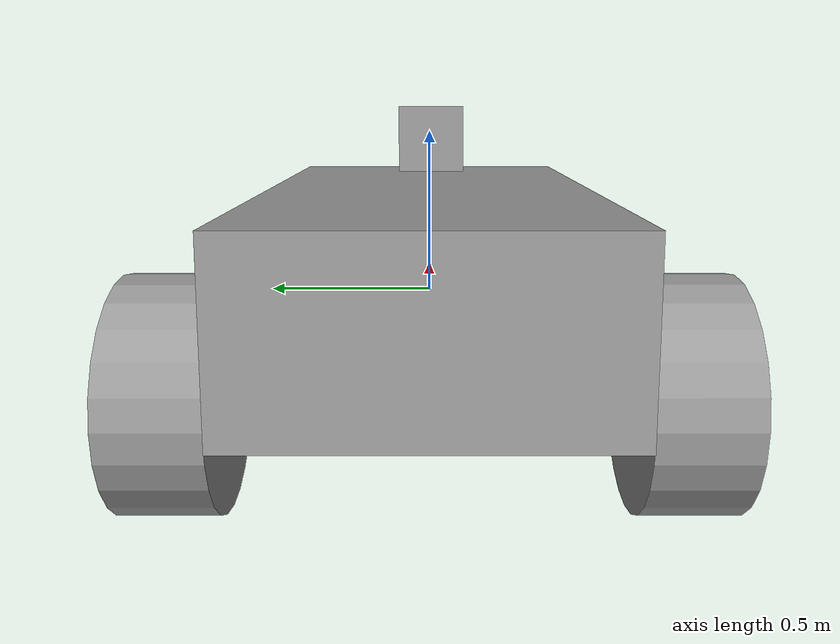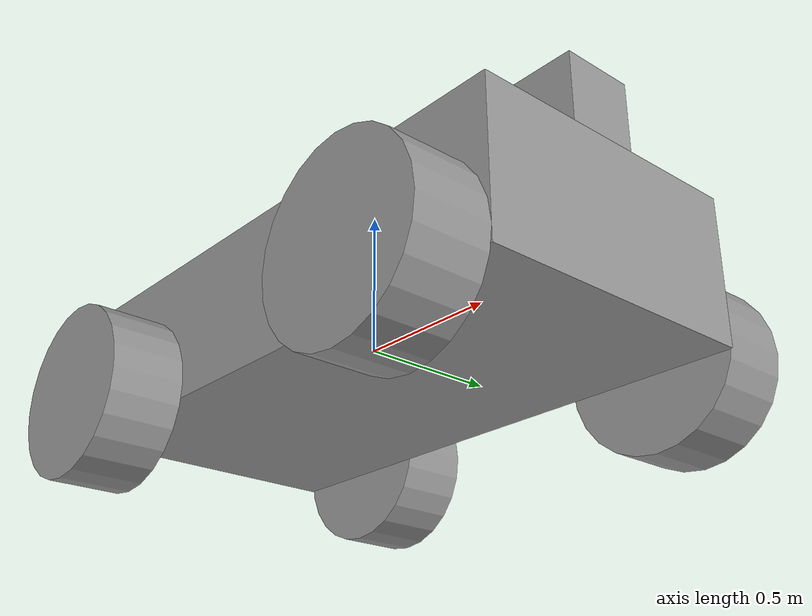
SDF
<?xml version='1.0'?>
<sdf version='1.7'>
  <model name='objectFollower'>
    <link name='link_0'>
      <inertial>
        <mass>1</mass>
        <inertia>
          <ixx>0.166667</ixx>
          <ixy>0</ixy>
          <ixz>0</ixz>
          <iyy>0.166667</iyy>
          <iyz>0</iyz>
          <izz>0.166667</izz>
        </inertia>
        <pose>0 0 0 0 -0 0</pose>
      </inertial>
      <pose>0.020993 0.00125 0.070833 0 -0 0</pose>
      <gravity>1</gravity>
      <self_collide>0</self_collide>
      <kinematic>0</kinematic>
      <enable_wind>0</enable_wind>
      <visual name='visual'>
        <pose>0 0 0 0 -0 0</pose>
        <geometry>
          <box>
            <size>2 1 0.5</size>
          </box>
        </geometry>
        <material>
          <lighting>1</lighting>
          <script>
            <uri>file://media/materials/scripts/gazebo.material</uri>
            <name>Gazebo/Grey</name>
          </script>
          <shader type='pixel'>
            <normal_map>__default__</normal_map>
          </shader>
          <ambient>0.3 0.3 0.3 1</ambient>
          <diffuse>0.7 0.7 0.7 1</diffuse>
          <specular>0.01 0.01 0.01 1</specular>
          <emissive>0 0 0 1</emissive>
        </material>
        <transparency>0</transparency>
        <cast_shadows>1</cast_shadows>
      </visual>
      <collision name='collision'>
        <laser_retro>0</laser_retro>
        <max_contacts>10</max_contacts>
        <pose>0 0 0 0 -0 0</pose>
        <geometry>
          <box>
            <size>0 0 0</size>
          </box>
        </geometry>
        <surface>
          <friction>
            <ode>
              <mu>1</mu>
              <mu2>1</mu2>
              <fdir1>0 0 0</fdir1>
              <slip1>0</slip1>
              <slip2>0</slip2>
            </ode>
            <torsional>
              <coefficient>1</coefficient>
              <patch_radius>0</patch_radius>
              <surface_radius>0</surface_radius>
              <use_patch_radius>1</use_patch_radius>
              <ode>
                <slip>0</slip>
              </ode>
            </torsional>
          </friction>
          <bounce>
            <restitution_coefficient>0</restitution_coefficient>
            <threshold>1e+06</threshold>
          </bounce>
          <contact>
            <collide_without_contact>0</collide_without_contact>
            <collide_without_contact_bitmask>1</collide_without_contact_bitmask>
            <collide_bitmask>1</collide_bitmask>
            <ode>
              <soft_cfm>0</soft_cfm>
              <soft_erp>0.2</soft_erp>
              <kp>1e+13</kp>
              <kd>1</kd>
              <max_vel>0.01</max_vel>
              <min_depth>0</min_depth>
            </ode>
            <bullet>
              <split_impulse>1</split_impulse>
              <split_impulse_penetration_threshold>-0.01</split_impulse_penetration_threshold>
              <soft_cfm>0</soft_cfm>
              <soft_erp>0.2</soft_erp>
              <kp>1e+13</kp>
              <kd>1</kd>
            </bullet>
          </contact>
        </surface>
      </collision>
    </link>
    <link name='link_1'>
      <inertial>
        <mass>1</mass>
        <inertia>
          <ixx>0.145833</ixx>
          <ixy>0</ixy>
          <ixz>0</ixz>
          <iyy>0.145833</iyy>
          <iyz>0</iyz>
          <izz>0.125</izz>
        </inertia>
        <pose>0 0 0 0 -0 0</pose>
      </inertial>
      <pose>-0.679007 -0.623779 -0.129167 1.5707 -0 0</pose>
      <gravity>1</gravity>
      <self_collide>0</self_collide>
      <kinematic>0</kinematic>
      <enable_wind>0</enable_wind>
      <visual name='visual'>
        <pose>0 0 0 0 -0 0</pose>
        <geometry>
          <cylinder>
            <radius>0.3</radius>
            <length>0.25</length>
          </cylinder>
        </geometry>
        <material>
          <lighting>1</lighting>
          <script>
            <uri>file://media/materials/scripts/gazebo.material</uri>
            <name>Gazebo/Grey</name>
          </script>
          <shader type='pixel'>
            <normal_map>__default__</normal_map>
          </shader>
          <ambient>0.3 0.3 0.3 1</ambient>
          <diffuse>0.7 0.7 0.7 1</diffuse>
          <specular>0.01 0.01 0.01 1</specular>
          <emissive>0 0 0 1</emissive>
        </material>
        <transparency>0</transparency>
        <cast_shadows>1</cast_shadows>
      </visual>
      <collision name='collision'>
        <laser_retro>0</laser_retro>
        <max_contacts>10</max_contacts>
        <pose>0 0 0 0 -0 0</pose>
        <geometry>
          <cylinder>
            <radius>0.3</radius>
            <length>0.25</length>
          </cylinder>
        </geometry>
        <surface>
          <friction>
            <ode>
              <mu>0.1</mu>
              <mu2>0.1</mu2>
              <fdir1>0 0 0</fdir1>
              <slip1>0</slip1>
              <slip2>0</slip2>
            </ode>
            <torsional>
              <coefficient>1</coefficient>
              <patch_radius>0</patch_radius>
              <surface_radius>0</surface_radius>
              <use_patch_radius>1</use_patch_radius>
              <ode>
                <slip>0</slip>
              </ode>
            </torsional>
          </friction>
          <bounce>
            <restitution_coefficient>0</restitution_coefficient>
            <threshold>1e+06</threshold>
          </bounce>
          <contact>
            <collide_without_contact>0</collide_without_contact>
            <collide_without_contact_bitmask>1</collide_without_contact_bitmask>
            <collide_bitmask>1</collide_bitmask>
            <ode>
              <soft_cfm>0</soft_cfm>
              <soft_erp>0.2</soft_erp>
              <kp>1e+13</kp>
              <kd>1</kd>
              <max_vel>0.01</max_vel>
              <min_depth>0</min_depth>
            </ode>
            <bullet>
              <split_impulse>1</split_impulse>
              <split_impulse_penetration_threshold>-0.01</split_impulse_penetration_threshold>
              <soft_cfm>0</soft_cfm>
              <soft_erp>0.2</soft_erp>
              <kp>1e+13</kp>
              <kd>1</kd>
            </bullet>
          </contact>
        </surface>
      </collision>
    </link>
    <link name='link_1_clone'>
      <inertial>
        <mass>1</mass>
        <inertia>
          <ixx>0.145833</ixx>
          <ixy>0</ixy>
          <ixz>0</ixz>
          <iyy>0.145833</iyy>
          <iyz>0</iyz>
          <izz>0.125</izz>
        </inertia>
        <pose>0 0 0 0 -0 0</pose>
      </inertial>
      <pose>0.720993 -0.623779 -0.129167 1.5707 -0 0</pose>
      <gravity>1</gravity>
      <self_collide>0</self_collide>
      <kinematic>0</kinematic>
      <enable_wind>0</enable_wind>
      <visual name='visual'>
        <pose>0 0 0 0 -0 0</pose>
        <geometry>
          <cylinder>
            <radius>0.3</radius>
            <length>0.25</length>
          </cylinder>
        </geometry>
        <material>
          <lighting>1</lighting>
          <script>
            <uri>file://media/materials/scripts/gazebo.material</uri>
            <name>Gazebo/Grey</name>
          </script>
          <shader type='pixel'>
            <normal_map>__default__</normal_map>
          </shader>
          <ambient>0.3 0.3 0.3 1</ambient>
          <diffuse>0.7 0.7 0.7 1</diffuse>
          <specular>0.01 0.01 0.01 1</specular>
          <emissive>0 0 0 1</emissive>
        </material>
        <transparency>0</transparency>
        <cast_shadows>1</cast_shadows>
      </visual>
      <collision name='collision'>
        <laser_retro>0</laser_retro>
        <max_contacts>10</max_contacts>
        <pose>0 0 0 0 -0 0</pose>
        <geometry>
          <cylinder>
            <radius>0.3</radius>
            <length>0.25</length>
          </cylinder>
        </geometry>
        <surface>
          <friction>
            <ode>
              <mu>0.1</mu>
              <mu2>0.1</mu2>
              <fdir1>0 0 0</fdir1>
              <slip1>0</slip1>
              <slip2>0</slip2>
            </ode>
            <torsional>
              <coefficient>1</coefficient>
              <patch_radius>0</patch_radius>
              <surface_radius>0</surface_radius>
              <use_patch_radius>1</use_patch_radius>
              <ode>
                <slip>0</slip>
              </ode>
            </torsional>
          </friction>
          <bounce>
            <restitution_coefficient>0</restitution_coefficient>
            <threshold>1e+06</threshold>
          </bounce>
          <contact>
            <collide_without_contact>0</collide_without_contact>
            <collide_without_contact_bitmask>1</collide_without_contact_bitmask>
            <collide_bitmask>1</collide_bitmask>
            <ode>
              <soft_cfm>0</soft_cfm>
              <soft_erp>0.2</soft_erp>
              <kp>1e+13</kp>
              <kd>1</kd>
              <max_vel>0.01</max_vel>
              <min_depth>0</min_depth>
            </ode>
            <bullet>
              <split_impulse>1</split_impulse>
              <split_impulse_penetration_threshold>-0.01</split_impulse_penetration_threshold>
              <soft_cfm>0</soft_cfm>
              <soft_erp>0.2</soft_erp>
              <kp>1e+13</kp>
              <kd>1</kd>
            </bullet>
          </contact>
        </surface>
      </collision>
    </link>
    <link name='link_1_clone_0'>
      <inertial>
        <mass>1</mass>
        <inertia>
          <ixx>0.145833</ixx>
          <ixy>0</ixy>
          <ixz>0</ixz>
          <iyy>0.145833</iyy>
          <iyz>0</iyz>
          <izz>0.125</izz>
        </inertia>
        <pose>0 0 0 0 -0 0</pose>
      </inertial>
      <pose>-0.679007 0.626279 -0.129167 1.5707 -0 0</pose>
      <gravity>1</gravity>
      <self_collide>0</self_collide>
      <kinematic>0</kinematic>
      <enable_wind>0</enable_wind>
      <visual name='visual'>
        <pose>0 0 0 0 -0 0</pose>
        <geometry>
          <cylinder>
            <radius>0.3</radius>
            <length>0.25</length>
          </cylinder>
        </geometry>
        <material>
          <lighting>1</lighting>
          <script>
            <uri>file://media/materials/scripts/gazebo.material</uri>
            <name>Gazebo/Grey</name>
          </script>
          <shader type='pixel'>
            <normal_map>__default__</normal_map>
          </shader>
          <ambient>0.3 0.3 0.3 1</ambient>
          <diffuse>0.7 0.7 0.7 1</diffuse>
          <specular>0.01 0.01 0.01 1</specular>
          <emissive>0 0 0 1</emissive>
        </material>
        <transparency>0</transparency>
        <cast_shadows>1</cast_shadows>
      </visual>
      <collision name='collision'>
        <laser_retro>0</laser_retro>
        <max_contacts>10</max_contacts>
        <pose>0 0 0 0 -0 0</pose>
        <geometry>
          <cylinder>
            <radius>0.3</radius>
            <length>0.25</length>
          </cylinder>
        </geometry>
        <surface>
          <friction>
            <ode>
             <mu>0.1</mu>
              <mu2>0.1</mu2>
              <fdir1>0 0 0</fdir1>
              <slip1>0</slip1>
              <slip2>0</slip2>
            </ode>
            <torsional>
              <coefficient>1</coefficient>
              <patch_radius>0</patch_radius>
              <surface_radius>0</surface_radius>
              <use_patch_radius>1</use_patch_radius>
              <ode>
                <slip>0</slip>
              </ode>
            </torsional>
          </friction>
          <bounce>
            <restitution_coefficient>0</restitution_coefficient>
            <threshold>1e+06</threshold>
          </bounce>
          <contact>
            <collide_without_contact>0</collide_without_contact>
            <collide_without_contact_bitmask>1</collide_without_contact_bitmask>
            <collide_bitmask>1</collide_bitmask>
            <ode>
              <soft_cfm>0</soft_cfm>
              <soft_erp>0.2</soft_erp>
              <kp>1e+13</kp>
              <kd>1</kd>
              <max_vel>0.01</max_vel>
              <min_depth>0</min_depth>
            </ode>
            <bullet>
              <split_impulse>1</split_impulse>
              <split_impulse_penetration_threshold>-0.01</split_impulse_penetration_threshold>
              <soft_cfm>0</soft_cfm>
              <soft_erp>0.2</soft_erp>
              <kp>1e+13</kp>
              <kd>1</kd>
            </bullet>
          </contact>
        </surface>
      </collision>
    </link>
    <link name='link_1_clone_1'>
      <inertial>
        <mass>1</mass>
        <inertia>
          <ixx>0.145833</ixx>
          <ixy>0</ixy>
          <ixz>0</ixz>
          <iyy>0.145833</iyy>
          <iyz>0</iyz>
          <izz>0.125</izz>
        </inertia>
        <pose>0 0 0 0 -0 0</pose>
      </inertial>
      <pose>0.720993 0.626279 -0.129167 1.5707 -0 0</pose>
      <gravity>1</gravity>
      <self_collide>0</self_collide>
      <kinematic>0</kinematic>
      <enable_wind>0</enable_wind>
      <visual name='visual'>
        <pose>0 0 0 0 -0 0</pose>
        <geometry>
          <cylinder>
            <radius>0.3</radius>
            <length>0.25</length>
          </cylinder>
        </geometry>
        <material>
          <lighting>1</lighting>
          <script>
            <uri>file://media/materials/scripts/gazebo.material</uri>
            <name>Gazebo/Grey</name>
          </script>
          <shader type='pixel'>
            <normal_map>__default__</normal_map>
          </shader>
          <ambient>0.3 0.3 0.3 1</ambient>
          <diffuse>0.7 0.7 0.7 1</diffuse>
          <specular>0.01 0.01 0.01 1</specular>
          <emissive>0 0 0 1</emissive>
        </material>
        <transparency>0</transparency>
        <cast_shadows>1</cast_shadows>
      </visual>
      <collision name='collision'>
        <laser_retro>0</laser_retro>
        <max_contacts>10</max_contacts>
        <pose>0 0 0 0 -0 0</pose>
        <geometry>
          <cylinder>
            <radius>0.3</radius>
            <length>0.25</length>
          </cylinder>
        </geometry>
        <surface>
          <friction>
            <ode>
              <mu>0.1</mu>
              <mu2>0.1</mu2>
              <fdir1>0 0 0</fdir1>
              <slip1>0</slip1>
              <slip2>0</slip2>
            </ode>
            <torsional>
              <coefficient>1</coefficient>
              <patch_radius>0</patch_radius>
              <surface_radius>0</surface_radius>
              <use_patch_radius>1</use_patch_radius>
              <ode>
                <slip>0</slip>
              </ode>
            </torsional>
          </friction>
          <bounce>
            <restitution_coefficient>0</restitution_coefficient>
            <threshold>1e+06</threshold>
          </bounce>
          <contact>
            <collide_without_contact>0</collide_without_contact>
            <collide_without_contact_bitmask>1</collide_without_contact_bitmask>
            <collide_bitmask>1</collide_bitmask>
            <ode>
              <soft_cfm>0</soft_cfm>
              <soft_erp>0.2</soft_erp>
              <kp>1e+13</kp>
              <kd>1</kd>
              <max_vel>0.01</max_vel>
              <min_depth>0</min_depth>
            </ode>
            <bullet>
              <split_impulse>1</split_impulse>
              <split_impulse_penetration_threshold>-0.01</split_impulse_penetration_threshold>
              <soft_cfm>0</soft_cfm>
              <soft_erp>0.2</soft_erp>
              <kp>1e+13</kp>
              <kd>1</kd>
            </bullet>
          </contact>
        </surface>
      </collision>
    </link>
    <link name='link_2'>
      <inertial>
        <mass>1</mass>
        <inertia>
          <ixx>0.166667</ixx>
          <ixy>0</ixy>
          <ixz>0</ixz>
          <iyy>0.166667</iyy>
          <iyz>0</iyz>
          <izz>0.166667</izz>
        </inertia>
        <pose>0 0 0 0 -0 0</pose>
      </inertial>
      <pose>0.880993 -0.00625 0.445833 0 -0 0</pose>
      <gravity>1</gravity>
      <self_collide>0</self_collide>
      <kinematic>0</kinematic>
      <enable_wind>0</enable_wind>
      <visual name='visual'>
        <pose>0 0 0 0 -0 0</pose>
        <geometry>
          <box>
            <size>0.25 0.25 0.25</size>
          </box>
        </geometry>
        <material>
          <lighting>1</lighting>
          <script>
            <uri>file://media/materials/scripts/gazebo.material</uri>
            <name>Gazebo/Grey</name>
          </script>
          <shader type='pixel'>
            <normal_map>__default__</normal_map>
          </shader>
          <ambient>0.3 0.3 0.3 1</ambient>
          <diffuse>0.7 0.7 0.7 1</diffuse>
          <specular>0.01 0.01 0.01 1</specular>
          <emissive>0 0 0 1</emissive>
        </material>
        <transparency>0</transparency>
        <cast_shadows>1</cast_shadows>
      </visual>
      <collision name='collision'>
        <laser_retro>0</laser_retro>
        <max_contacts>10</max_contacts>
        <pose>0 0 0 0 -0 0</pose>
        <geometry>
          <box>
            <size>0.25 0.25 0.25</size>
          </box>
        </geometry>
        <surface>
          <friction>
            <ode>
              <mu>1</mu>
              <mu2>1</mu2>
              <fdir1>0 0 0</fdir1>
              <slip1>0</slip1>
              <slip2>0</slip2>
            </ode>
            <torsional>
              <coefficient>1</coefficient>
              <patch_radius>0</patch_radius>
              <surface_radius>0</surface_radius>
              <use_patch_radius>1</use_patch_radius>
              <ode>
                <slip>0</slip>
              </ode>
            </torsional>
          </friction>
          <bounce>
            <restitution_coefficient>0</restitution_coefficient>
            <threshold>1e+06</threshold>
          </bounce>
          <contact>
            <collide_without_contact>0</collide_without_contact>
            <collide_without_contact_bitmask>1</collide_without_contact_bitmask>
            <collide_bitmask>1</collide_bitmask>
            <ode>
              <soft_cfm>0</soft_cfm>
              <soft_erp>0.2</soft_erp>
              <kp>1e+13</kp>
              <kd>1</kd>
              <max_vel>0.01</max_vel>
              <min_depth>0</min_depth>
            </ode>
            <bullet>
              <split_impulse>1</split_impulse>
              <split_impulse_penetration_threshold>-0.01</split_impulse_penetration_threshold>
              <soft_cfm>0</soft_cfm>
              <soft_erp>0.2</soft_erp>
              <kp>1e+13</kp>
              <kd>1</kd>
            </bullet>
          </contact>
        </surface>
      </collision>
      <sensor name="ultrasonic_1" type="ray">
        <pose>0.125 0 0 0 0 0</pose>
        <always_on>true</always_on>
        <visualize>true</visualize>
        <update_rate>60</update_rate>
        <ray>
          <scan>
            <horizontal>
              <samples>60</samples>
              <resolution>1.000000</resolution>
              <min_angle>-0.52</min_angle>
              <max_angle>0.52</max_angle>
            </horizontal>
            <vertical>
              <samples>60</samples>
              <resolution>1.000000</resolution>
              <min_angle>-0.01</min_angle>
              <max_angle>0.01</max_angle>
            </vertical>
          </scan>
          <range>
            <min>0.02</min>
            <max>40</max>
            <resolution>0.01</resolution>
          </range>
          <noise>
            <type>gaussian</type>
            <mean>0.0</mean>
            <stddev>0.01</stddev>
          </noise>
        </ray>
        <plugin name="ultrasonic_sensor_1" filename="libgazebo_ros_range.so">
          <alwaysOn>true</alwaysOn>
          <updateRate>60</updateRate>
          <topicName>/sensor/Range</topicName>
          <output_type>sensor_msgs/Range</output_type>
          <radiation>ultrasound</radiation>
          <frameName>ultrasonic_1_link</frameName>
        </plugin>
      </sensor>
    </link>
    <joint name='link_0_JOINT_1' type='revolute'>
      <parent>link_0</parent>
      <child>link_1_clone_1</child>
      <pose>0 0 0 0 -0 0</pose>
      <axis>
        <xyz>0 0 1</xyz>
        <limit>
          <lower>-1.79769e+308</lower>
          <upper>1.79769e+308</upper>
          <effort>-1</effort>
          <velocity>-1</velocity>
        </limit>
        <dynamics>
          <spring_reference>0</spring_reference>
          <spring_stiffness>0</spring_stiffness>
          <damping>0</damping>
        </dynamics>
      </axis>
      <physics>
        <ode>
          <limit>
            <cfm>0</cfm>
            <erp>0.2</erp>
          </limit>
          <suspension>
            <cfm>0</cfm>
            <erp>0.2</erp>
          </suspension>
        </ode>
      </physics>
    </joint>
    <joint name='link_0_JOINT_2' type='revolute'>
      <parent>link_0</parent>
      <child>link_1_clone</child>
      <pose>0 0 0 0 -0 0</pose>
      <axis>
        <xyz>0 0 1</xyz>
        <limit>
          <lower>-1.79769e+308</lower>
          <upper>1.79769e+308</upper>
          <effort>-1</effort>
          <velocity>-1</velocity>
        </limit>
        <dynamics>
          <spring_reference>0</spring_reference>
          <spring_stiffness>0</spring_stiffness>
          <damping>0</damping>
        </dynamics>
      </axis>
      <physics>
        <ode>
          <limit>
            <cfm>0</cfm>
            <erp>0.2</erp>
          </limit>
          <suspension>
            <cfm>0</cfm>
            <erp>0.2</erp>
          </suspension>
        </ode>
      </physics>
    </joint>
    <joint name='link_0_JOINT_3' type='revolute'>
      <parent>link_0</parent>
      <child>link_1</child>
      <pose>0 0 0 0 -0 0</pose>
      <axis>
        <xyz>0 0 1</xyz>
        <limit>
          <lower>-1.79769e+308</lower>
          <upper>1.79769e+308</upper>
          <effort>-1</effort>
          <velocity>-1</velocity>
        </limit>
        <dynamics>
          <spring_reference>0</spring_reference>
          <spring_stiffness>0</spring_stiffness>
          <damping>0</damping>
        </dynamics>
      </axis>
      <physics>
        <ode>
          <limit>
            <cfm>0</cfm>
            <erp>0.2</erp>
          </limit>
          <suspension>
            <cfm>0</cfm>
            <erp>0.2</erp>
          </suspension>
        </ode>
      </physics>
    </joint>
    <joint name='link_0_JOINT_4' type='revolute'>
      <parent>link_0</parent>
      <child>link_1_clone_0</child>
      <pose>0 0 0 0 -0 0</pose>
      <axis>
        <xyz>0 0 1</xyz>
        <limit>
          <lower>-1.79769e+308</lower>
          <upper>1.79769e+308</upper>
          <effort>-1</effort>
          <velocity>-1</velocity>
        </limit>
        <dynamics>
          <spring_reference>0</spring_reference>
          <spring_stiffness>0</spring_stiffness>
          <damping>0</damping>
        </dynamics>
      </axis>
      <physics>
        <ode>
          <limit>
            <cfm>0</cfm>
            <erp>0.2</erp>
          </limit>
          <suspension>
            <cfm>0</cfm>
            <erp>0.2</erp>
          </suspension>
        </ode>
      </physics>
    </joint>
    <joint name='link_0_JOINT_5' type='revolute'>
      <parent>link_0</parent>
      <child>link_2</child>
      <pose>0 0 0 0 -0 0</pose>
      <axis>
        <xyz>0 0 1</xyz>
        <limit>
          <lower>-1.79769e+308</lower>
          <upper>1.79769e+308</upper>
          <effort>-1</effort>
          <velocity>-1</velocity>
        </limit>
        <dynamics>
          <spring_reference>0</spring_reference>
          <spring_stiffness>0</spring_stiffness>
          <damping>0</damping>
        </dynamics>
      </axis>
      <physics>
        <ode>
          <limit>
            <cfm>0</cfm>
            <erp>0.2</erp>
          </limit>
          <suspension>
            <cfm>0</cfm>
            <erp>0.2</erp>
          </suspension>
        </ode>
      </physics>
    </joint>
    <static>0</static>
    <allow_auto_disable>1</allow_auto_disable>
    <plugin name="model_push" filename="libcontrol_plugin.so"/>
  </model>
</sdf>
